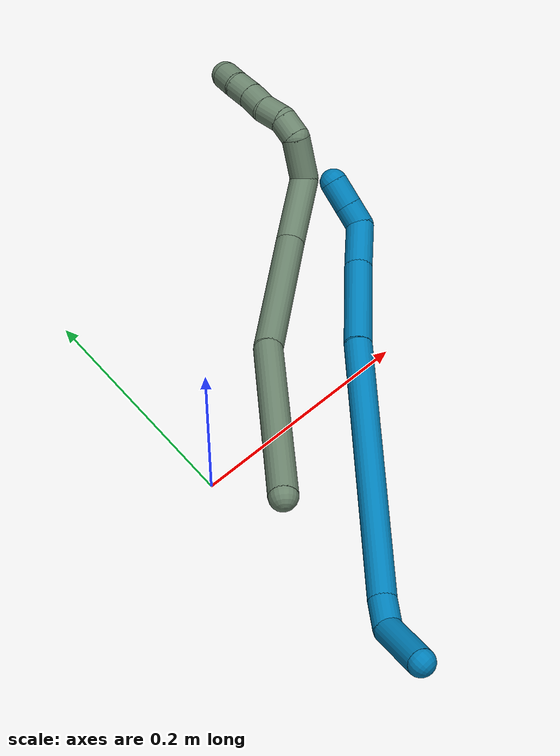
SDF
<sdf version="1.7">
 <world name="default">
  <model name="9">
   <static>0</static>
   <link name="9">
    <collision name="collision-cylinder-e_1_1_4">
     <pose>-0.012227 0.015116 0.020622 -0.632515 -0.446057 0.148166</pose>
     <geometry><cylinder><radius>0.0125</radius><length>0.056684</length></cylinder></geometry>
     <surface>
      <friction><ode><mu>1.16</mu><mu2>1.16</mu2><slip1>0</slip1><slip2>0</slip2></ode></friction>
      <contact><ode><kp>1e+06</kp><kd>1</kd><max_vel>0</max_vel><min_depth>0.001</min_depth></ode></contact>
     </surface>
    </collision>
    <visual name="visual-cylinder-e_1_1_4">
     <pose>-0.012227 0.015116 0.020622 -0.632515 -0.446057 0.148166</pose>
     <geometry><cylinder><radius>0.0125</radius><length>0.056684</length></cylinder></geometry>
     <material><ambient>0 0.490196 0.709804 1</ambient></material>
    </visual>
    <collision name="collision-cylinder-e_2_4_5">
     <pose>-0.022598 0.038831 0.051769 -0.685088 0.135765 -0.048479</pose>
     <geometry><cylinder><radius>0.0125</radius><length>0.027434</length></cylinder></geometry>
     <surface>
      <friction><ode><mu>1.16</mu><mu2>1.16</mu2><slip1>0</slip1><slip2>0</slip2></ode></friction>
      <contact><ode><kp>1e+06</kp><kd>1</kd><max_vel>0</max_vel><min_depth>0.001</min_depth></ode></contact>
     </surface>
    </collision>
    <visual name="visual-cylinder-e_2_4_5">
     <pose>-0.022598 0.038831 0.051769 -0.685088 0.135765 -0.048479</pose>
     <geometry><cylinder><radius>0.0125</radius><length>0.027434</length></cylinder></geometry>
     <material><ambient>0 0.490196 0.709804 1</ambient></material>
    </visual>
    <collision name="collision-cylinder-e_3_5_6">
     <pose>0.010652 0.12284 0.152631 -0.695574 0.260703 -0.094978</pose>
     <geometry><cylinder><radius>0.0125</radius><length>0.243581</length></cylinder></geometry>
     <surface>
      <friction><ode><mu>1.16</mu><mu2>1.16</mu2><slip1>0</slip1><slip2>0</slip2></ode></friction>
      <contact><ode><kp>1e+06</kp><kd>1</kd><max_vel>0</max_vel><min_depth>0.001</min_depth></ode></contact>
     </surface>
    </collision>
    <visual name="visual-cylinder-e_3_5_6">
     <pose>0.010652 0.12284 0.152631 -0.695574 0.260703 -0.094978</pose>
     <geometry><cylinder><radius>0.0125</radius><length>0.243581</length></cylinder></geometry>
     <material><ambient>0 0.490196 0.709804 1</ambient></material>
    </visual>
    <collision name="collision-cylinder-e_4_6_7">
     <pose>0.052135 0.227186 0.270707 -0.806547 0.246599 -0.105651</pose>
     <geometry><cylinder><radius>0.0125</radius><length>0.082669</length></cylinder></geometry>
     <surface>
      <friction><ode><mu>1.16</mu><mu2>1.16</mu2><slip1>0</slip1><slip2>0</slip2></ode></friction>
      <contact><ode><kp>1e+06</kp><kd>1</kd><max_vel>0</max_vel><min_depth>0.001</min_depth></ode></contact>
     </surface>
    </collision>
    <visual name="visual-cylinder-e_4_6_7">
     <pose>0.052135 0.227186 0.270707 -0.806547 0.246599 -0.105651</pose>
     <geometry><cylinder><radius>0.0125</radius><length>0.082669</length></cylinder></geometry>
     <material><ambient>0 0.490196 0.709804 1</ambient></material>
    </visual>
    <collision name="collision-cylinder-e_5_7_8">
     <pose>0.069368 0.270932 0.313102 -0.790561 0.330256 -0.138839</pose>
     <geometry><cylinder><radius>0.0125</radius><length>0.044054</length></cylinder></geometry>
     <surface>
      <friction><ode><mu>1.16</mu><mu2>1.16</mu2><slip1>0</slip1><slip2>0</slip2></ode></friction>
      <contact><ode><kp>1e+06</kp><kd>1</kd><max_vel>0</max_vel><min_depth>0.001</min_depth></ode></contact>
     </surface>
    </collision>
    <visual name="visual-cylinder-e_5_7_8">
     <pose>0.069368 0.270932 0.313102 -0.790561 0.330256 -0.138839</pose>
     <geometry><cylinder><radius>0.0125</radius><length>0.044054</length></cylinder></geometry>
     <material><ambient>0 0.490196 0.709804 1</ambient></material>
    </visual>
    <collision name="collision-cylinder-e_6_8_9">
     <pose>0.079547 0.28597 0.33756 -0.023276 0.300336 -0.003522</pose>
     <geometry><cylinder><radius>0.0125</radius><length>0.020525</length></cylinder></geometry>
     <surface>
      <friction><ode><mu>1.16</mu><mu2>1.16</mu2><slip1>0</slip1><slip2>0</slip2></ode></friction>
      <contact><ode><kp>1e+06</kp><kd>1</kd><max_vel>0</max_vel><min_depth>0.001</min_depth></ode></contact>
     </surface>
    </collision>
    <visual name="visual-cylinder-e_6_8_9">
     <pose>0.079547 0.28597 0.33756 -0.023276 0.300336 -0.003522</pose>
     <geometry><cylinder><radius>0.0125</radius><length>0.020525</length></cylinder></geometry>
     <material><ambient>0 0.490196 0.709804 1</ambient></material>
    </visual>
    <collision name="collision-cylinder-e_7_9_2">
     <pose>0.086325 0.28643 0.359312 -0.019366 0.303374 -0.00296</pose>
     <geometry><cylinder><radius>0.0125</radius><length>0.025053</length></cylinder></geometry>
     <surface>
      <friction><ode><mu>1.16</mu><mu2>1.16</mu2><slip1>0</slip1><slip2>0</slip2></ode></friction>
      <contact><ode><kp>1e+06</kp><kd>1</kd><max_vel>0</max_vel><min_depth>0.001</min_depth></ode></contact>
     </surface>
    </collision>
    <visual name="visual-cylinder-e_7_9_2">
     <pose>0.086325 0.28643 0.359312 -0.019366 0.303374 -0.00296</pose>
     <geometry><cylinder><radius>0.0125</radius><length>0.025053</length></cylinder></geometry>
     <material><ambient>0 0.490196 0.709804 1</ambient></material>
    </visual>
    <collision name="collision-sphere-2">
     <pose>0.090067 0.286661 0.371264 0 -0 0</pose>
     <geometry><sphere><radius>0.0125</radius></sphere></geometry>
     <surface>
      <friction><ode><mu>1.16</mu><mu2>1.16</mu2><slip1>0</slip1><slip2>0</slip2></ode></friction>
      <contact><ode><kp>1e+06</kp><kd>1</kd><max_vel>0</max_vel><min_depth>0.001</min_depth></ode></contact>
     </surface>
    </collision>
    <visual name="visual-sphere-2">
     <pose>0.090067 0.286661 0.371264 0 -0 0</pose>
     <geometry><sphere><radius>0.0125</radius></sphere></geometry>
     <material><ambient>0 0.490196 0.709804 1</ambient></material>
    </visual>
    <collision name="collision-sphere-9">
     <pose>0.082583 0.286198 0.34736 0 -0 0</pose>
     <geometry><sphere><radius>0.0125</radius></sphere></geometry>
     <surface>
      <friction><ode><mu>1.16</mu><mu2>1.16</mu2><slip1>0</slip1><slip2>0</slip2></ode></friction>
      <contact><ode><kp>1e+06</kp><kd>1</kd><max_vel>0</max_vel><min_depth>0.001</min_depth></ode></contact>
     </surface>
    </collision>
    <visual name="visual-sphere-9">
     <pose>0.082583 0.286198 0.34736 0 -0 0</pose>
     <geometry><sphere><radius>0.0125</radius></sphere></geometry>
     <material><ambient>0 0.490196 0.709804 1</ambient></material>
    </visual>
    <collision name="collision-sphere-4">
     <pose>-0.024454 0.030231 0.041245 0 -0 0</pose>
     <geometry><sphere><radius>0.0125</radius></sphere></geometry>
     <surface>
      <friction><ode><mu>1.16</mu><mu2>1.16</mu2><slip1>0</slip1><slip2>0</slip2></ode></friction>
      <contact><ode><kp>1e+06</kp><kd>1</kd><max_vel>0</max_vel><min_depth>0.001</min_depth></ode></contact>
     </surface>
    </collision>
    <visual name="visual-sphere-4">
     <pose>-0.024454 0.030231 0.041245 0 -0 0</pose>
     <geometry><sphere><radius>0.0125</radius></sphere></geometry>
     <material><ambient>0 0.490196 0.709804 1</ambient></material>
    </visual>
    <collision name="collision-sphere-1">
     <geometry><sphere><radius>0.0125</radius></sphere></geometry>
     <surface>
      <friction><ode><mu>1.16</mu><mu2>1.16</mu2><slip1>0</slip1><slip2>0</slip2></ode></friction>
      <contact><ode><kp>1e+06</kp><kd>1</kd><max_vel>0</max_vel><min_depth>0.001</min_depth></ode></contact>
     </surface>
    </collision>
    <visual name="visual-sphere-1">
     <geometry><sphere><radius>0.0125</radius></sphere></geometry>
     <material><ambient>0 0.490196 0.709804 1</ambient></material>
    </visual>
    <collision name="collision-sphere-8">
     <pose>0.076511 0.285742 0.32776 0 -0 0</pose>
     <geometry><sphere><radius>0.0125</radius></sphere></geometry>
     <surface>
      <friction><ode><mu>1.16</mu><mu2>1.16</mu2><slip1>0</slip1><slip2>0</slip2></ode></friction>
      <contact><ode><kp>1e+06</kp><kd>1</kd><max_vel>0</max_vel><min_depth>0.001</min_depth></ode></contact>
     </surface>
    </collision>
    <visual name="visual-sphere-8">
     <pose>0.076511 0.285742 0.32776 0 -0 0</pose>
     <geometry><sphere><radius>0.0125</radius></sphere></geometry>
     <material><ambient>0 0.490196 0.709804 1</ambient></material>
    </visual>
    <collision name="collision-sphere-5">
     <pose>-0.020741 0.04743 0.062293 0 -0 0</pose>
     <geometry><sphere><radius>0.0125</radius></sphere></geometry>
     <surface>
      <friction><ode><mu>1.16</mu><mu2>1.16</mu2><slip1>0</slip1><slip2>0</slip2></ode></friction>
      <contact><ode><kp>1e+06</kp><kd>1</kd><max_vel>0</max_vel><min_depth>0.001</min_depth></ode></contact>
     </surface>
    </collision>
    <visual name="visual-sphere-5">
     <pose>-0.020741 0.04743 0.062293 0 -0 0</pose>
     <geometry><sphere><radius>0.0125</radius></sphere></geometry>
     <material><ambient>0 0.490196 0.709804 1</ambient></material>
    </visual>
    <collision name="collision-sphere-6">
     <pose>0.042045 0.198249 0.242969 0 -0 0</pose>
     <geometry><sphere><radius>0.0125</radius></sphere></geometry>
     <surface>
      <friction><ode><mu>1.16</mu><mu2>1.16</mu2><slip1>0</slip1><slip2>0</slip2></ode></friction>
      <contact><ode><kp>1e+06</kp><kd>1</kd><max_vel>0</max_vel><min_depth>0.001</min_depth></ode></contact>
     </surface>
    </collision>
    <visual name="visual-sphere-6">
     <pose>0.042045 0.198249 0.242969 0 -0 0</pose>
     <geometry><sphere><radius>0.0125</radius></sphere></geometry>
     <material><ambient>0 0.490196 0.709804 1</ambient></material>
    </visual>
    <collision name="collision-sphere-7">
     <pose>0.062225 0.256123 0.298445 0 -0 0</pose>
     <geometry><sphere><radius>0.0125</radius></sphere></geometry>
     <surface>
      <friction><ode><mu>1.16</mu><mu2>1.16</mu2><slip1>0</slip1><slip2>0</slip2></ode></friction>
      <contact><ode><kp>1e+06</kp><kd>1</kd><max_vel>0</max_vel><min_depth>0.001</min_depth></ode></contact>
     </surface>
    </collision>
    <visual name="visual-sphere-7">
     <pose>0.062225 0.256123 0.298445 0 -0 0</pose>
     <geometry><sphere><radius>0.0125</radius></sphere></geometry>
     <material><ambient>0 0.490196 0.709804 1</ambient></material>
    </visual>
    <inertial>
     <pose>0.024886 0.151212 0.18374 0 -0 0</pose>
     <mass>0.5</mass>
     <inertia>
      <ixx>0.001138</ixx>
      <ixy>0</ixy>
      <ixz>0</ixz>
      <iyy>0.000916</iyy>
      <iyz>0</iyz>
      <izz>-0.001097</izz>
     </inertia>
    </inertial>
   </link>
   <pose>0.008578 -0.250162 0.06583 -1.34343 -0.966713 -0.116181</pose>
  </model>
  <model name="17">
   <static>0</static>
   <link name="17">
    <collision name="collision-cylinder-e_1_1_4">
     <pose>0.015573 0.016145 0.07915 -0.201217 0.190451 -0.019284</pose>
     <geometry><cylinder><radius>0.0125</radius><length>0.164535</length></cylinder></geometry>
     <surface>
      <friction><ode><mu>1.16</mu><mu2>1.16</mu2><slip1>0</slip1><slip2>0</slip2></ode></friction>
      <contact><ode><kp>1e+06</kp><kd>1</kd><max_vel>0</max_vel><min_depth>0.001</min_depth></ode></contact>
     </surface>
    </collision>
    <visual name="visual-cylinder-e_1_1_4">
     <pose>0.015573 0.016145 0.07915 -0.201217 0.190451 -0.019284</pose>
     <geometry><cylinder><radius>0.0125</radius><length>0.164535</length></cylinder></geometry>
     <material><ambient>0.415686 0.509804 0.423529 1</ambient></material>
    </visual>
    <collision name="collision-cylinder-e_2_4_5">
     <pose>0.055383 0.037192 0.220673 -0.078429 0.369584 -0.014667</pose>
     <geometry><cylinder><radius>0.0125</radius><length>0.134191</length></cylinder></geometry>
     <surface>
      <friction><ode><mu>1.16</mu><mu2>1.16</mu2><slip1>0</slip1><slip2>0</slip2></ode></friction>
      <contact><ode><kp>1e+06</kp><kd>1</kd><max_vel>0</max_vel><min_depth>0.001</min_depth></ode></contact>
     </surface>
    </collision>
    <visual name="visual-cylinder-e_2_4_5">
     <pose>0.055383 0.037192 0.220673 -0.078429 0.369584 -0.014667</pose>
     <geometry><cylinder><radius>0.0125</radius><length>0.134191</length></cylinder></geometry>
     <material><ambient>0.415686 0.509804 0.423529 1</ambient></material>
    </visual>
    <collision name="collision-cylinder-e_3_5_6">
     <pose>0.082779 0.030811 0.310929 0.38448 0.104646 0.020387</pose>
     <geometry><cylinder><radius>0.0125</radius><length>0.06049</length></cylinder></geometry>
     <surface>
      <friction><ode><mu>1.16</mu><mu2>1.16</mu2><slip1>0</slip1><slip2>0</slip2></ode></friction>
      <contact><ode><kp>1e+06</kp><kd>1</kd><max_vel>0</max_vel><min_depth>0.001</min_depth></ode></contact>
     </surface>
    </collision>
    <visual name="visual-cylinder-e_3_5_6">
     <pose>0.082779 0.030811 0.310929 0.38448 0.104646 0.020387</pose>
     <geometry><cylinder><radius>0.0125</radius><length>0.06049</length></cylinder></geometry>
     <material><ambient>0.415686 0.509804 0.423529 1</ambient></material>
    </visual>
    <collision name="collision-cylinder-e_4_6_7">
     <pose>0.075159 0.009605 0.351198 0.675508 -0.596669 -0.21517</pose>
     <geometry><cylinder><radius>0.0125</radius><length>0.038371</length></cylinder></geometry>
     <surface>
      <friction><ode><mu>1.16</mu><mu2>1.16</mu2><slip1>0</slip1><slip2>0</slip2></ode></friction>
      <contact><ode><kp>1e+06</kp><kd>1</kd><max_vel>0</max_vel><min_depth>0.001</min_depth></ode></contact>
     </surface>
    </collision>
    <visual name="visual-cylinder-e_4_6_7">
     <pose>0.075159 0.009605 0.351198 0.675508 -0.596669 -0.21517</pose>
     <geometry><cylinder><radius>0.0125</radius><length>0.038371</length></cylinder></geometry>
     <material><ambient>0.415686 0.509804 0.423529 1</ambient></material>
    </visual>
    <collision name="collision-cylinder-e_5_7_8">
     <pose>0.059446 0.000934 0.372193 -0.144461 -0.515686 0.038158</pose>
     <geometry><cylinder><radius>0.0125</radius><length>0.020004</length></cylinder></geometry>
     <surface>
      <friction><ode><mu>1.16</mu><mu2>1.16</mu2><slip1>0</slip1><slip2>0</slip2></ode></friction>
      <contact><ode><kp>1e+06</kp><kd>1</kd><max_vel>0</max_vel><min_depth>0.001</min_depth></ode></contact>
     </surface>
    </collision>
    <visual name="visual-cylinder-e_5_7_8">
     <pose>0.059446 0.000934 0.372193 -0.144461 -0.515686 0.038158</pose>
     <geometry><cylinder><radius>0.0125</radius><length>0.020004</length></cylinder></geometry>
     <material><ambient>0.415686 0.509804 0.423529 1</ambient></material>
    </visual>
    <collision name="collision-cylinder-e_6_8_9">
     <pose>0.049902 0.007976 0.388697 -0.632833 -0.440314 0.14628</pose>
     <geometry><cylinder><radius>0.0125</radius><length>0.021642</length></cylinder></geometry>
     <surface>
      <friction><ode><mu>1.16</mu><mu2>1.16</mu2><slip1>0</slip1><slip2>0</slip2></ode></friction>
      <contact><ode><kp>1e+06</kp><kd>1</kd><max_vel>0</max_vel><min_depth>0.001</min_depth></ode></contact>
     </surface>
    </collision>
    <visual name="visual-cylinder-e_6_8_9">
     <pose>0.049902 0.007976 0.388697 -0.632833 -0.440314 0.14628</pose>
     <geometry><cylinder><radius>0.0125</radius><length>0.021642</length></cylinder></geometry>
     <material><ambient>0.415686 0.509804 0.423529 1</ambient></material>
    </visual>
    <collision name="collision-cylinder-e_7_9_10">
     <pose>0.042655 0.018294 0.4054 -0.474795 -0.259968 0.063237</pose>
     <geometry><cylinder><radius>0.0125</radius><length>0.020498</length></cylinder></geometry>
     <surface>
      <friction><ode><mu>1.16</mu><mu2>1.16</mu2><slip1>0</slip1><slip2>0</slip2></ode></friction>
      <contact><ode><kp>1e+06</kp><kd>1</kd><max_vel>0</max_vel><min_depth>0.001</min_depth></ode></contact>
     </surface>
    </collision>
    <visual name="visual-cylinder-e_7_9_10">
     <pose>0.042655 0.018294 0.4054 -0.474795 -0.259968 0.063237</pose>
     <geometry><cylinder><radius>0.0125</radius><length>0.020498</length></cylinder></geometry>
     <material><ambient>0.415686 0.509804 0.423529 1</ambient></material>
    </visual>
    <collision name="collision-cylinder-e_8_10_11">
     <pose>0.036774 0.027738 0.422296 -0.546173 -0.3305 0.093352</pose>
     <geometry><cylinder><radius>0.0125</radius><length>0.020011</length></cylinder></geometry>
     <surface>
      <friction><ode><mu>1.16</mu><mu2>1.16</mu2><slip1>0</slip1><slip2>0</slip2></ode></friction>
      <contact><ode><kp>1e+06</kp><kd>1</kd><max_vel>0</max_vel><min_depth>0.001</min_depth></ode></contact>
     </surface>
    </collision>
    <visual name="visual-cylinder-e_8_10_11">
     <pose>0.036774 0.027738 0.422296 -0.546173 -0.3305 0.093352</pose>
     <geometry><cylinder><radius>0.0125</radius><length>0.020011</length></cylinder></geometry>
     <material><ambient>0.415686 0.509804 0.423529 1</ambient></material>
    </visual>
    <collision name="collision-cylinder-e_9_11_2">
     <pose>0.032242 0.0381 0.438826 -0.572895 -0.127172 0.037505</pose>
     <geometry><cylinder><radius>0.0125</radius><length>0.020259</length></cylinder></geometry>
     <surface>
      <friction><ode><mu>1.16</mu><mu2>1.16</mu2><slip1>0</slip1><slip2>0</slip2></ode></friction>
      <contact><ode><kp>1e+06</kp><kd>1</kd><max_vel>0</max_vel><min_depth>0.001</min_depth></ode></contact>
     </surface>
    </collision>
    <visual name="visual-cylinder-e_9_11_2">
     <pose>0.032242 0.0381 0.438826 -0.572895 -0.127172 0.037505</pose>
     <geometry><cylinder><radius>0.0125</radius><length>0.020259</length></cylinder></geometry>
     <material><ambient>0.415686 0.509804 0.423529 1</ambient></material>
    </visual>
    <collision name="collision-sphere-2">
     <pose>0.030957 0.043546 0.44727 0 -0 0</pose>
     <geometry><sphere><radius>0.0125</radius></sphere></geometry>
     <surface>
      <friction><ode><mu>1.16</mu><mu2>1.16</mu2><slip1>0</slip1><slip2>0</slip2></ode></friction>
      <contact><ode><kp>1e+06</kp><kd>1</kd><max_vel>0</max_vel><min_depth>0.001</min_depth></ode></contact>
     </surface>
    </collision>
    <visual name="visual-sphere-2">
     <pose>0.030957 0.043546 0.44727 0 -0 0</pose>
     <geometry><sphere><radius>0.0125</radius></sphere></geometry>
     <material><ambient>0.415686 0.509804 0.423529 1</ambient></material>
    </visual>
    <collision name="collision-sphere-11">
     <pose>0.033527 0.032653 0.430383 0 -0 0</pose>
     <geometry><sphere><radius>0.0125</radius></sphere></geometry>
     <surface>
      <friction><ode><mu>1.16</mu><mu2>1.16</mu2><slip1>0</slip1><slip2>0</slip2></ode></friction>
      <contact><ode><kp>1e+06</kp><kd>1</kd><max_vel>0</max_vel><min_depth>0.001</min_depth></ode></contact>
     </surface>
    </collision>
    <visual name="visual-sphere-11">
     <pose>0.033527 0.032653 0.430383 0 -0 0</pose>
     <geometry><sphere><radius>0.0125</radius></sphere></geometry>
     <material><ambient>0.415686 0.509804 0.423529 1</ambient></material>
    </visual>
    <collision name="collision-sphere-10">
     <pose>0.040021 0.022822 0.414209 0 -0 0</pose>
     <geometry><sphere><radius>0.0125</radius></sphere></geometry>
     <surface>
      <friction><ode><mu>1.16</mu><mu2>1.16</mu2><slip1>0</slip1><slip2>0</slip2></ode></friction>
      <contact><ode><kp>1e+06</kp><kd>1</kd><max_vel>0</max_vel><min_depth>0.001</min_depth></ode></contact>
     </surface>
    </collision>
    <visual name="visual-sphere-10">
     <pose>0.040021 0.022822 0.414209 0 -0 0</pose>
     <geometry><sphere><radius>0.0125</radius></sphere></geometry>
     <material><ambient>0.415686 0.509804 0.423529 1</ambient></material>
    </visual>
    <collision name="collision-sphere-9">
     <pose>0.04529 0.013766 0.39659 0 -0 0</pose>
     <geometry><sphere><radius>0.0125</radius></sphere></geometry>
     <surface>
      <friction><ode><mu>1.16</mu><mu2>1.16</mu2><slip1>0</slip1><slip2>0</slip2></ode></friction>
      <contact><ode><kp>1e+06</kp><kd>1</kd><max_vel>0</max_vel><min_depth>0.001</min_depth></ode></contact>
     </surface>
    </collision>
    <visual name="visual-sphere-9">
     <pose>0.04529 0.013766 0.39659 0 -0 0</pose>
     <geometry><sphere><radius>0.0125</radius></sphere></geometry>
     <material><ambient>0.415686 0.509804 0.423529 1</ambient></material>
    </visual>
    <collision name="collision-sphere-4">
     <pose>0.031147 0.03229 0.1583 0 -0 0</pose>
     <geometry><sphere><radius>0.0125</radius></sphere></geometry>
     <surface>
      <friction><ode><mu>1.16</mu><mu2>1.16</mu2><slip1>0</slip1><slip2>0</slip2></ode></friction>
      <contact><ode><kp>1e+06</kp><kd>1</kd><max_vel>0</max_vel><min_depth>0.001</min_depth></ode></contact>
     </surface>
    </collision>
    <visual name="visual-sphere-4">
     <pose>0.031147 0.03229 0.1583 0 -0 0</pose>
     <geometry><sphere><radius>0.0125</radius></sphere></geometry>
     <material><ambient>0.415686 0.509804 0.423529 1</ambient></material>
    </visual>
    <collision name="collision-sphere-1">
     <geometry><sphere><radius>0.0125</radius></sphere></geometry>
     <surface>
      <friction><ode><mu>1.16</mu><mu2>1.16</mu2><slip1>0</slip1><slip2>0</slip2></ode></friction>
      <contact><ode><kp>1e+06</kp><kd>1</kd><max_vel>0</max_vel><min_depth>0.001</min_depth></ode></contact>
     </surface>
    </collision>
    <visual name="visual-sphere-1">
     <geometry><sphere><radius>0.0125</radius></sphere></geometry>
     <material><ambient>0.415686 0.509804 0.423529 1</ambient></material>
    </visual>
    <collision name="collision-sphere-8">
     <pose>0.054514 0.002187 0.380804 0 -0 0</pose>
     <geometry><sphere><radius>0.0125</radius></sphere></geometry>
     <surface>
      <friction><ode><mu>1.16</mu><mu2>1.16</mu2><slip1>0</slip1><slip2>0</slip2></ode></friction>
      <contact><ode><kp>1e+06</kp><kd>1</kd><max_vel>0</max_vel><min_depth>0.001</min_depth></ode></contact>
     </surface>
    </collision>
    <visual name="visual-sphere-8">
     <pose>0.054514 0.002187 0.380804 0 -0 0</pose>
     <geometry><sphere><radius>0.0125</radius></sphere></geometry>
     <material><ambient>0.415686 0.509804 0.423529 1</ambient></material>
    </visual>
    <collision name="collision-sphere-5">
     <pose>0.07962 0.042093 0.283045 0 -0 0</pose>
     <geometry><sphere><radius>0.0125</radius></sphere></geometry>
     <surface>
      <friction><ode><mu>1.16</mu><mu2>1.16</mu2><slip1>0</slip1><slip2>0</slip2></ode></friction>
      <contact><ode><kp>1e+06</kp><kd>1</kd><max_vel>0</max_vel><min_depth>0.001</min_depth></ode></contact>
     </surface>
    </collision>
    <visual name="visual-sphere-5">
     <pose>0.07962 0.042093 0.283045 0 -0 0</pose>
     <geometry><sphere><radius>0.0125</radius></sphere></geometry>
     <material><ambient>0.415686 0.509804 0.423529 1</ambient></material>
    </visual>
    <collision name="collision-sphere-6">
     <pose>0.085939 0.019529 0.338812 0 -0 0</pose>
     <geometry><sphere><radius>0.0125</radius></sphere></geometry>
     <surface>
      <friction><ode><mu>1.16</mu><mu2>1.16</mu2><slip1>0</slip1><slip2>0</slip2></ode></friction>
      <contact><ode><kp>1e+06</kp><kd>1</kd><max_vel>0</max_vel><min_depth>0.001</min_depth></ode></contact>
     </surface>
    </collision>
    <visual name="visual-sphere-6">
     <pose>0.085939 0.019529 0.338812 0 -0 0</pose>
     <geometry><sphere><radius>0.0125</radius></sphere></geometry>
     <material><ambient>0.415686 0.509804 0.423529 1</ambient></material>
    </visual>
    <collision name="collision-sphere-7">
     <pose>0.064378 -0.000318 0.363583 0 -0 0</pose>
     <geometry><sphere><radius>0.0125</radius></sphere></geometry>
     <surface>
      <friction><ode><mu>1.16</mu><mu2>1.16</mu2><slip1>0</slip1><slip2>0</slip2></ode></friction>
      <contact><ode><kp>1e+06</kp><kd>1</kd><max_vel>0</max_vel><min_depth>0.001</min_depth></ode></contact>
     </surface>
    </collision>
    <visual name="visual-sphere-7">
     <pose>0.064378 -0.000318 0.363583 0 -0 0</pose>
     <geometry><sphere><radius>0.0125</radius></sphere></geometry>
     <material><ambient>0.415686 0.509804 0.423529 1</ambient></material>
    </visual>
    <inertial>
     <pose>0.044836 0.023545 0.232854 0 -0 0</pose>
     <mass>0.5</mass>
     <inertia>
      <ixx>0.000588</ixx>
      <ixy>0</ixy>
      <ixz>0</ixz>
      <iyy>0.000601</iyy>
      <iyz>0</iyz>
      <izz>-0.000189</izz>
     </inertia>
    </inertial>
   </link>
   <pose>-0.005459 -0.099251 0.150579 -1.60084 0.657121 -0.61971</pose>
  </model>
 </world>
</sdf>
